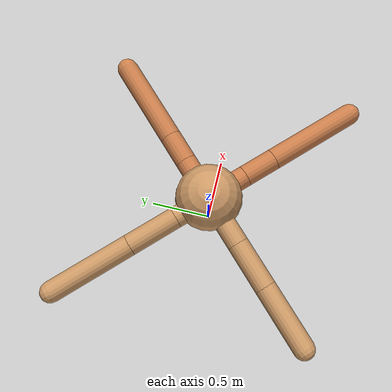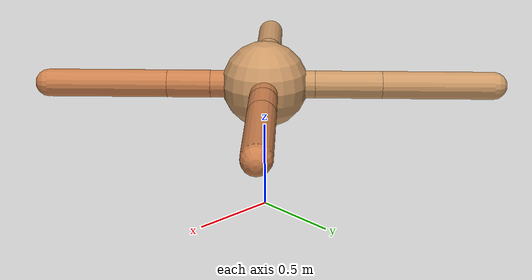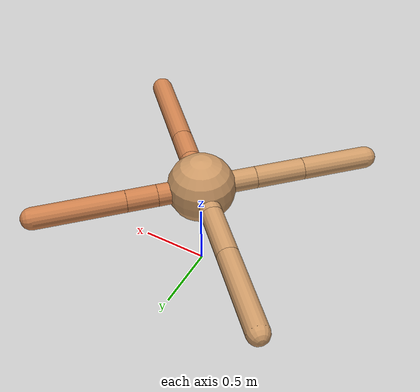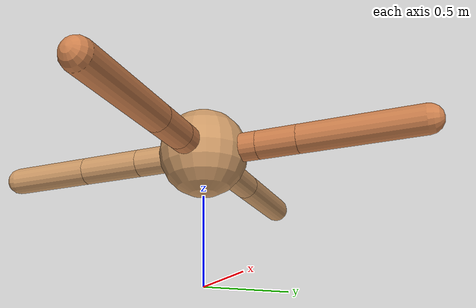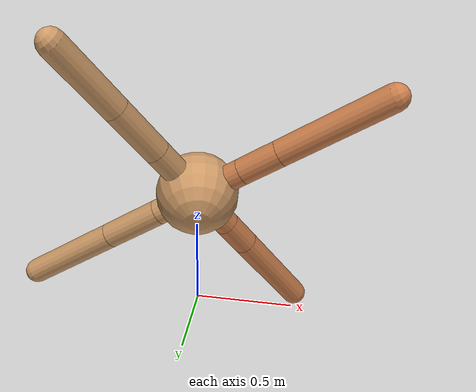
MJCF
<mujoco model="ant">
  <compiler angle="degree" coordinate="local" inertiafromgeom="true" />
  <option integrator="RK4" timestep="0.01" />
  <custom>
    <numeric data="0.0 0.0 0.55 1.0 0.0 0.0 0.0 0.0 1.0 0.0 -1.0 0.0 -1.0 0.0 1.0" name="init_qpos" />
  </custom>
  <default>
    <joint armature="1" damping="1" limited="true" />
    <geom conaffinity="0" condim="3" density="5.0" friction="1.5 0.1 0.1" margin="0.01" rgba="0.8 0.6 0.4 1" />
  </default>
  <worldbody>
    <body name="torso" pos="0 0 0.75">
      <geom name="torso_geom" pos="0 0 0" size="0.25" type="sphere" />

      <body name="front_left_leg" pos="0 0 0">
        <geom fromto="0.0 0.0 0.0 0.23000538611508664 0.23000538611508664 0.0" name="aux_1_geom" size="0.08" type="capsule" rgba=".8 .5 .3 1" />
        <body name="aux_1" pos="0.23000538611508664 0.23000538611508664 0.0">
          <joint axis="0 0 1" name="hip_1" pos="0.0 0.0 0.0" range="-40 40" type="hinge" />
          <geom fromto="0.0 0.0 0.0 0.1590193929994456 0.1590193929994456 0.0" name="left_leg_geom" size="0.08" type="capsule" rgba=".8 .5 .3 1" />
          <body pos="0.1590193929994456 0.1590193929994456 0.0" name="front_left_foot">
            <joint axis="-1 1 0" name="ankle_1" pos="0.0 0.0 0.0" range="30 100" type="hinge" />
            <geom fromto="0.0 0.0 0.0 0.46571314283535004 0.46571314283535004 0.0" name="left_ankle_geom" size="0.08" type="capsule" rgba=".8 .5 .3 1" />
          </body>
        </body>
      </body>
      <body name="front_right_leg" pos="0 0 0">
        <geom fromto="0.0 0.0 0.0 -0.20422744881794666 0.20422744881794666 0.0" name="aux_2_geom" size="0.08" type="capsule" />
        <body name="aux_2" pos="-0.20422744881794666 0.20422744881794666 0.0">
          <joint axis="0 0 1" name="hip_2" pos="0.0 0.0 0.0" range="-40 40" type="hinge" />
          <geom fromto="0.0 0.0 0.0 -0.2731596568877432 0.2731596568877432 0.0" name="right_leg_geom" size="0.08" type="capsule" />
          <body pos="-0.2731596568877432 0.2731596568877432 0.0" name="front_right_foot">
            <joint axis="1 1 0" name="ankle_2" pos="0.0 0.0 0.0" range="-100 -30" type="hinge" />
            <geom fromto="0.0 0.0 0.0 -0.452601338062143 0.452601338062143 0.0" name="right_ankle_geom" size="0.08" type="capsule" />
          </body>
        </body>
      </body>
      <body name="left_back_leg" pos="0 0 0">
        <geom fromto="0.0 0.0 0.0 -0.2862418497011193 -0.2862418497011193 0.0" name="aux_3_geom" size="0.08" type="capsule" />
        <body name="aux_3" pos="-0.2862418497011193 -0.2862418497011193 0.0">
          <joint axis="0 0 1" name="hip_3" pos="0.0 0.0 0.0" range="-40 40" type="hinge" />
          <geom fromto="0.0 0.0 0.0 -0.2558970422160022 -0.2558970422160022 0.0" name="back_leg_geom" size="0.08" type="capsule" />
          <body pos="-0.2558970422160022 -0.2558970422160022 0.0" name="left_back_foot">
            <joint axis="-1 1 0" name="ankle_3" pos="0.0 0.0 0.0" range="-100 -30" type="hinge" />
            <geom fromto="0.0 0.0 0.0 -0.35178191580684487 -0.35178191580684487 0.0" name="third_ankle_geom" size="0.08" type="capsule" />
          </body>
        </body>
      </body>
      <body name="right_back_leg" pos="0 0 0">
        <geom fromto="0.0 0.0 0.0 0.22217672436494232 -0.22217672436494232 0.0" name="aux_4_geom" size="0.08" type="capsule" rgba=".8 .5 .3 1" />
        <body name="aux_4" pos="0.22217672436494232 -0.22217672436494232 0.0">
          <joint axis="0 0 1" name="hip_4" pos="0.0 0.0 0.0" range="-40 40" type="hinge" />
          <geom fromto="0.0 0.0 0.0 0.17699566268234498 -0.17699566268234498 0.0" name="rightback_leg_geom" size="0.08" type="capsule" rgba=".8 .5 .3 1" />
          <body pos="0.17699566268234498 -0.17699566268234498 0.0" name="right_back_foot">
            <joint axis="1 1 0" name="ankle_4" pos="0.0 0.0 0.0" range="30 100" type="hinge" />
            <geom fromto="0.0 0.0 0.0 0.48776957206345684 -0.48776957206345684 0.0" name="fourth_ankle_geom" size="0.08" type="capsule" rgba=".8 .5 .3 1" />
          </body>
        </body>
      </body>
    </body>
  </worldbody>
  <actuator>
    <motor ctrllimited="true" ctrlrange="-1.0 1.0" joint="hip_4" gear="150" />
    <motor ctrllimited="true" ctrlrange="-1.0 1.0" joint="ankle_4" gear="150" />
    <motor ctrllimited="true" ctrlrange="-1.0 1.0" joint="hip_1" gear="150" />
    <motor ctrllimited="true" ctrlrange="-1.0 1.0" joint="ankle_1" gear="150" />
    <motor ctrllimited="true" ctrlrange="-1.0 1.0" joint="hip_2" gear="150" />
    <motor ctrllimited="true" ctrlrange="-1.0 1.0" joint="ankle_2" gear="150" />
    <motor ctrllimited="true" ctrlrange="-1.0 1.0" joint="hip_3" gear="150" />
    <motor ctrllimited="true" ctrlrange="-1.0 1.0" joint="ankle_3" gear="150" />
  </actuator>
</mujoco>
